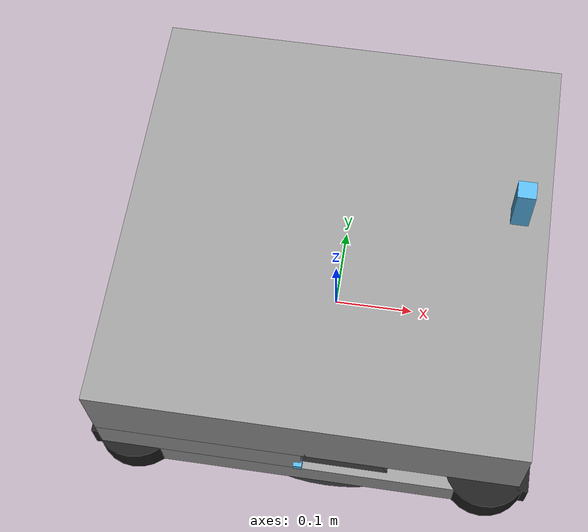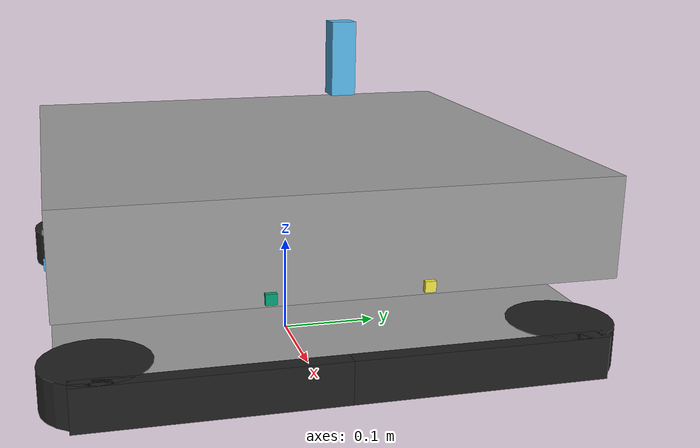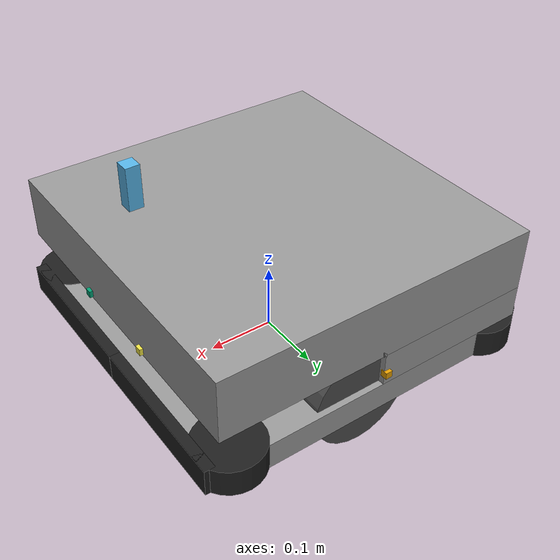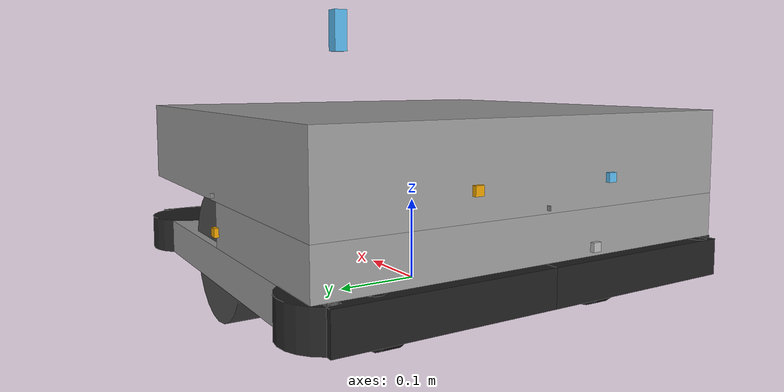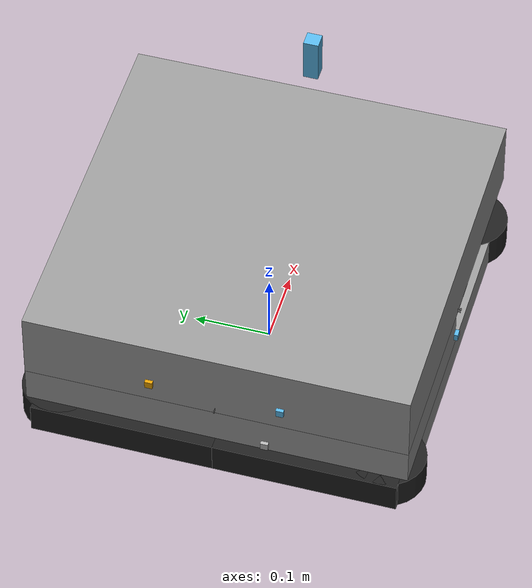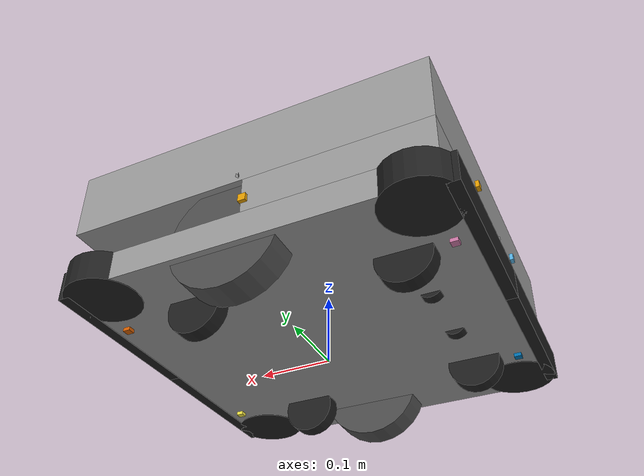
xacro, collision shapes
<?xml version="1.0"?>
<robot name="gobot" xmlns:xacro="http://ros.org/wiki/xacro">

    <!-- general xacro's file -->
    <xacro:include filename="$(find gobot_description)/urdf/utilities/materials.xacro" />
    <xacro:include filename="$(find gobot_description)/urdf/utilities/macros.xacro" />
    <!-- xacro for base link -->
    <xacro:include filename="$(find gobot_description)/urdf/base/base_link.urdf.xacro" />
    <!-- xacro for the driving wheels -->
    <xacro:include filename="$(find gobot_description)/urdf/wheels/wheel.urdf.xacro" />
    <xacro:include filename="$(find gobot_description)/urdf/wheels/caster.urdf.xacro" />
    <!-- xacro for the laser -->
    <xacro:include filename="$(find gobot_description)/urdf/laser/hokuyo_04lx_laser.urdf.xacro" />
    <!-- xacro for the odometry -->
    <xacro:include filename="$(find gobot_description)/urdf/wheels/wheel_controller.gazebo.xacro" />
    <!-- xacro for the bumpers -->
    <xacro:include filename="$(find gobot_description)/urdf/bumper/bumper.urdf.xacro" />
    <xacro:include filename="$(find gobot_description)/urdf/bumper/cyl_bumper.urdf.xacro" />
    <!-- xacro for sonars -->
    <xacro:include filename="$(find gobot_description)/urdf/sonar/sonar.urdf.xacro" />
    <!-- xacro for cliff sensors -->
    <xacro:include filename="$(find gobot_description)/urdf/cliff/cliff.urdf.xacro" />
    <!-- xacro for camera (IR) sensors -->
    <xacro:include filename="$(find gobot_description)/urdf/camera/camera.urdf.xacro" />
    <!-- xacro for the battery -->
    <xacro:include filename="$(find gobot_description)/urdf/battery/battery.urdf.xacro" />

    <!-- Base -->
    <xacro:property name="base_width" value="0.49" />
    <xacro:property name="base_length" value="0.50" />
    <xacro:property name="base_height" value="0.185" />
    <xacro:property name="lower_base_height" value="0.04" />
    <xacro:property name="base_space_height" value="0.05" />
    <xacro:property name="base_space_width" value="0.25" />

    <!-- Laser -->
    <xacro:property name="laser_width" value="0.01" />
    <xacro:property name="laser_length" value="0.05" />
    <xacro:property name="laser_height" value="0.06" />

    <!-- Wheels -->
    <xacro:property name="driving_wheel_radius" value="0.075" />
    <xacro:property name="driving_wheel_length" value="0.042" />
    <xacro:property name="driving_wheel_mass" value="0.6" /> <!-- in kg-->

    <!-- Bumper -->
    <xacro:property name="bumper_width" value="0.016" />
    <xacro:property name="bumper_length" value="0.24" />
    <xacro:property name="bumper_height" value="0.041" />
    <xacro:property name="bumper_radius" value="0.05" />

    <!-- Battery -->
    <xacro:property name="battery_height" value="0.015" />
    <xacro:property name="battery_radius" value="0.0165" />

    <xacro:property name="originZ" value="0.05"/>

    <xacro:property name="visualize" value="false"/>

    <!-- robot base -->
    <base_link base_width="${base_width}" base_length="${base_length}" base_height="${base_height}" lower_base_height="${lower_base_height}" base_space_height="${base_space_height}" base_space_width="${base_space_width}" originZ="${originZ}"/>

    <!-- bumpers -->
    <cyl_bumper name="front_right_cyl_bumper" parent="base_link" height="${bumper_height}" radius="${bumper_radius}" translateX="${base_width/2 - 0.0345}" translateY="${-(base_length/2 - 0.035)}" translateZ="${originZ}" jointLowerLimit="-0.005" jointUpperLimit="0" jointVelocity="0.5"
        collision="base_link_fixed_joint_lump__front_right_cyl_bumper_collision_12"/>
    <cyl_bumper name="front_left_cyl_bumper" parent="base_link" height="${bumper_height}" radius="${bumper_radius}" translateX="${base_width/2 - 0.0345}" translateY="${base_length/2 - 0.035}" translateZ="${originZ}" jointLowerLimit="-0.005" jointUpperLimit="0" jointVelocity="0.5"
        collision="base_link_fixed_joint_lump__front_left_cyl_bumper_collision_10"/>
    <cyl_bumper name="back_right_cyl_bumper" parent="base_link" height="${bumper_height}" radius="${bumper_radius}" translateX="${-(base_width/2 - 0.0345)}" translateY="${-(base_length/2 - 0.035)}" translateZ="${originZ}" jointLowerLimit="0" jointUpperLimit="0.005" jointVelocity="-0.5"
        collision="base_link_fixed_joint_lump__back_right_cyl_bumper_collision_4"/>
    <cyl_bumper name="back_left_cyl_bumper" parent="base_link" height="${bumper_height}" radius="${bumper_radius}" translateX="${-(base_width/2 - 0.0345)}" translateY="${base_length/2 - 0.035}" translateZ="${originZ}" jointLowerLimit="0" jointUpperLimit="0.005" jointVelocity="-0.5"
        collision="base_link_fixed_joint_lump__back_left_cyl_bumper_collision_2"/>

    <bumper name="front_right_bumper" parent="base_link" width="${bumper_width}" length="${bumper_length}" height="${bumper_height}" translateX="${base_width/2 + bumper_width/2}" translateY="${-bumper_length/2}" translateZ="${originZ}" jointLowerLimit="-0.005" jointUpperLimit="0" jointVelocity="0.5"
        collision="base_link_fixed_joint_lump__front_right_bumper_collision_11"/>
    <bumper name="front_left_bumper" parent="base_link" width="${bumper_width}" length="${bumper_length}" height="${bumper_height}" translateX="${base_width/2 + bumper_width/2}" translateY="${bumper_length/2}" translateZ="${originZ}" jointLowerLimit="-0.005" jointUpperLimit="0" jointVelocity="0.5"
        collision="base_link_fixed_joint_lump__front_left_bumper_collision_9"/>
    <bumper name="back_right_bumper" parent="base_link" width="${bumper_width}" length="${bumper_length}" height="${bumper_height}" translateX="${-(base_width/2 + bumper_width/2)}" translateY="${-bumper_length/2}" translateZ="${originZ}" jointLowerLimit="0" jointUpperLimit="0.005" jointVelocity="-0.5"
        collision="base_link_fixed_joint_lump__back_right_bumper_collision_3"/>
    <bumper name="back_left_bumper" parent="base_link" width="${bumper_width}" length="${bumper_length}" height="${bumper_height}" translateX="${-(base_width/2 + bumper_width/2)}" translateY="${bumper_length/2}" translateZ="${originZ}" jointLowerLimit="0" jointUpperLimit="0.005" jointVelocity="-0.5"
        collision="base_link_fixed_joint_lump__back_left_bumper_collision_1"/>

    <!-- driving wheels -->
    <wheel fb="front" lr="right" parent="base_link" translateX="${-(base_width/2 - 0.267)}" translateY="-0.220" translateZ="${-(lower_base_height / 2 - driving_wheel_radius)}" flipY="1" radius="${driving_wheel_radius}" length="${driving_wheel_length}" mass="${driving_wheel_mass}" />
    <wheel fb="front" lr="left" parent="base_link" translateX="${-(base_width/2 - 0.267)}" translateY="0.220" translateZ="${-(lower_base_height / 2 - driving_wheel_radius)}" flipY="1" radius="${driving_wheel_radius}" length="${driving_wheel_length}" mass="${driving_wheel_mass}" />

    <!-- Odometry/Wheel controller -->
    <wheel_controller base_link="base_link" odom_topic="odom" command_topic="cmd_vel" left_wheel_joint="front_left_wheel_joint" right_wheel_joint="front_right_wheel_joint"
    update_rate="10" wheel_separation="0.440" wheel_diameter="${driving_wheel_radius*2}" torque="5" />

    <!-- caster wheels -->
    <caster_wheel fb="front" lr="right" parent="base_link" translateX="${base_width/2 - 0.140}" translateY="${-(base_length/2 - 0.090)}" translateZ="${-(lower_base_height / 2 - 0.037)}" flipY="1"  />
    <caster_wheel fb="front" lr="left" parent="base_link" translateX="${base_width/2 - 0.140}" translateY="${base_length/2 - 0.090}" translateZ="${-(lower_base_height / 2 - 0.037)}" flipY="1"/>
    <caster_wheel fb="back" lr="right" parent="base_link" translateX="${-(base_width/2 - 0.080)}" translateY="${-(base_length/2 - 0.110)}" translateZ="${-(lower_base_height / 2 - 0.037) + 0.008}" flipY="1"/>
    <caster_wheel fb="back" lr="left" parent="base_link" translateX="${-(base_width/2 - 0.080)}" translateY="${base_length/2 - 0.110}" translateZ="${-(lower_base_height / 2 - 0.037) + 0.008}" flipY="1"/>

    <!-- Hokuyo Laser -->
    <hokuyo_04lx_laser name="hokuyo" parent="base_link" ros_topic="/scan" update_rate="20" min_angle="${-1.8}" max_angle="${1.8}" translateX="${base_width/2 - 0.04266}" translateY="0" translateZ="${0.29}" visualize="1"/>

    <!-- Cliff sensor, IR technology on real robot but we use a sonar here to simulate -->
    <!-- In order; front left, back left, front right, back right -->
    <cliff_sensor name="cliff_sensor" parent="base_link" ros_topic="cliff_sensor_topic" update_rate="10" min_range="0.03" max_range="2.0" field_of_view="0.05" ray_count="1" pos_x="${base_width/2-0.02}" pos_y="${-(base_width/2 - 0.10)}" pos_z="${originZ - lower_base_height/2}" rotation_y="${pi/2}" gaussian_noise="0.03" resolution="0.01" />
    <cliff_sensor name="cliff_sensor_2" parent="base_link" ros_topic="cliff_sensor_2_topic" update_rate="10" min_range="0.01" max_range="2.0" field_of_view="0.05" ray_count="1" pos_x="${-base_width/2+0.02}" pos_y="${-(base_width/2 - 0.10)}" pos_z="${originZ - lower_base_height/2}" rotation_y="${pi/2}" gaussian_noise="0.03" resolution="0.01" />
    <cliff_sensor name="cliff_sensor_3" parent="base_link" ros_topic="cliff_sensor_3_topic" update_rate="10" min_range="0.01" max_range="2.0" field_of_view="0.05" ray_count="1" pos_x="${base_width/2-0.02}" pos_y="${(base_width/2 - 0.10)}" pos_z="${originZ - lower_base_height/2}" rotation_y="${pi/2}" gaussian_noise="0.03" resolution="0.01" />
    <cliff_sensor name="cliff_sensor_4" parent="base_link" ros_topic="cliff_sensor_4_topic" update_rate="10" min_range="0.01" max_range="2.0" field_of_view="0.05" ray_count="1" pos_x="${-base_width/2+0.02}" pos_y="${(base_width/2 - 0.10)}" pos_z="${originZ - lower_base_height/2}" rotation_y="${pi/2}" gaussian_noise="0.03" resolution="0.01" />

    <!-- Sonar sensors, in order: rear, left side, right side, front right and front left -->
    <sonar_sensor name="sonar_rear" parent="base_link" ros_topic="/sensors/sonar_sensor/sonar_rear" update_rate="20" min_range="0.15" max_range="2.5" field_of_view="${pi/18}" ray_count="10" pos_x="${-base_width/2}" pos_y="-0.065"  pos_z="0.08" rotation_z="${pi}" gaussian_noise="0.01" resolution="0.0174" visualize="${visualize}"/>
    <sonar_sensor name="sonar_left" parent="base_link" ros_topic="/sensors/sonar_sensor/sonar_left" update_rate="20" min_range="0.15" max_range="2.5" field_of_view="${pi/18}" ray_count="10" pos_x="-0.009" pos_y="${base_length/2}" pos_z="0.088" rotation_z="${pi/2}" gaussian_noise="0.01" resolution="0.0174" visualize="${visualize}"/>
    <sonar_sensor name="sonar_right" parent="base_link" ros_topic="/sensors/sonar_sensor/sonar_right" update_rate="20" min_range="0.15" max_range="2.5" field_of_view="${pi/18}" ray_count="10" pos_x="-0.009" pos_y="${-base_length/2}" pos_z="0.088" rotation_z="${3*pi/2}" gaussian_noise="0.01" resolution="0.0174" visualize="${visualize}"/>
    <sonar_sensor name="sonar_front_right" parent="base_link" ros_topic="/sensors/sonar_sensor/sonar_front_right" update_rate="20" min_range="0.15" max_range="2.5" field_of_view="${pi/18}" ray_count="10" pos_x="${base_width/2}" pos_y="-0.070" pos_z="0.128" rotation_z="0.0" gaussian_noise="0.01" resolution="0.0174" visualize="${visualize}"/>
    <sonar_sensor name="sonar_front_left" parent="base_link" ros_topic="/sensors/sonar_sensor/sonar_front_left" update_rate="20" min_range="0.15" max_range="2.5" field_of_view="${pi/18}" ray_count="10" pos_x="${base_width/2}" pos_y="0.070" pos_z="0.128" rotation_z="0.0" gaussian_noise="0.01" resolution="0.0174" visualize="${visualize}"/>

    <!-- IR sensors -->
    <camera_sensor name="rear" parent="base_link" pos_x="${-base_width/2}" pos_y="0" pos_z="0.126" rotation_z="0" angle="${pi * 15 / 180}"/>
    <camera_sensor name="right" parent="base_link" pos_x="0" pos_y="${-base_length/2}" pos_z="0.126" rotation_z="${pi/2}" angle="${pi/4}"/>
    <camera_sensor name="left" parent="base_link" pos_x="0" pos_y="${base_length/2}" pos_z="0.126" rotation_z="${pi*3/2}" angle="${pi/4}"/>

    <!-- Proximity sensors -->
    <sonar_sensor name="prox_left" parent="base_link" ros_topic="/sensors/sonar_sensor/proximity_left" update_rate="20" min_range="0.05" max_range="0.15" field_of_view="0.05" ray_count="1" pos_x="${-base_width/2}" pos_y="0.085" pos_z="0.15" rotation_z="${pi}" gaussian_noise="0.0" resolution="0.01" visualize="1"/>
    <sonar_sensor name="prox_right" parent="base_link" ros_topic="/sensors/sonar_sensor/proximity_right" update_rate="20" min_range="0.05" max_range="0.15" field_of_view="0.05" ray_count="1" pos_x="${-base_width/2}" pos_y="-0.085" pos_z="0.15" rotation_z="${pi}" gaussian_noise="0.0" resolution="0.01" visualize="1"/>

    <!-- Battery sensors -->
    <battery name="left_battery" parent="base_link" height="${battery_height}" radius="${battery_radius}" translateX="${-base_width/2 + 0.08}" translateY="0.049" translateZ="0.040" rotationX="${pi/2}" collision="left_battery_collision" update_rate="20"/>
    <battery name="right_battery" parent="base_link" height="${battery_height}" radius="${battery_radius}" translateX="${-base_width/2 + 0.08}" translateY="-0.049" translateZ="0.040" rotationX="${pi/2}" collision="right_battery_collision" update_rate="20"/>

</robot>

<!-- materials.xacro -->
<robot>
    <material name="black">
        <color rgba="0.0 0.0 0.0 1.0"/>
    </material>

    <material name="blue">
        <color rgba="0.0 0.0 0.8 1.0"/>
    </material>

    <material name="green">
        <color rgba="0.0 0.8 0.0 1.0"/>
    </material>

    <material name="grey">
        <color rgba="0.2 0.2 0.2 1.0"/>
    </material>

    <material name="orange">
        <color rgba="${255/255} ${108/255} ${10/255} 1.0"/>
    </material>

    <material name="brown">
        <color rgba="${222/255} ${207/255} ${195/255} 1.0"/>
    </material>

    <material name="red">
        <color rgba="0.8 0.0 0.0 1.0"/>
    </material>

    <material name="white">
        <color rgba="1.0 1.0 1.0 1.0"/>
    </material>
</robot>

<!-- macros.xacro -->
<robot name="gobot" xmlns:xacro="http://ros.org/wiki/xacro">

<xacro:macro name="cylinder_inertia" params="m r h">
  <inertia  ixx="${m*(3*r*r+h*h)/12}" ixy = "0" ixz = "0"
    iyy="${m*(3*r*r+h*h)/12}" iyz = "0"
    izz="${m*r*r/2}"
  />
</xacro:macro>

<xacro:macro name="box_inertia" params="m x y z">
  <inertia  ixx="${m*(y*y+z*z)/12}" ixy = "0" ixz = "0"
    iyy="${m*(x*x+z*z)/12}" iyz = "0"
    izz="${m*(x*x+z*z)/12}"
  />
</xacro:macro>

<xacro:macro name="sphere_inertia" params="m r">
  <inertia  ixx="${2*m*r*r/5}" ixy = "0" ixz = "0"
    iyy="${2*m*r*r/5}" iyz = "0"
    izz="${2*m*r*r/5}"
  />
</xacro:macro>

</robot>

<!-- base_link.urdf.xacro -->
<robot name="base_link" xmlns:xacro="http://ros.org/wiki/xacro">
    <xacro:macro name="base_link" params="originZ base_width base_length base_height lower_base_height base_space_height base_space_width"> <!--fb : front, back ; lr: left, right -->
        <!-- The lower part of the base link -->
        <link name="base_link">
            <collision>
                <origin xyz="0 0 ${originZ}" rpy="0 0 0"/>
                <geometry>
                    <box size="${base_width} ${base_length} ${lower_base_height}"/>
                </geometry>
            </collision>
            <visual>
                <origin xyz="0 0 ${originZ}" rpy="0 0 0"/>
                <geometry>
                    <box size="${base_width} ${base_length} ${lower_base_height}"/>
                </geometry>
            </visual>
            <inertial>
                <origin xyz="0 0 ${originZ}" rpy="0 0 0"/>
                <mass value="4"/>
                <box_inertia m="4" x="${base_width}" y="${base_length}" z="${lower_base_height}"/>
            </inertial>
        </link>
        <gazebo reference="base_link">
            <material>Gazebo/Grey</material>
        </gazebo>

        <!-- The middle part of the base link -->
        <link name="mid_base_link">
            <collision>
                <origin xyz="0 0 ${originZ}" rpy="0 0 0"/>
                <geometry>
                    <box size="${base_width - base_space_width} ${base_length} ${base_space_height}"/>
                </geometry>
            </collision>
            <visual>
                <origin xyz="0 0 ${originZ}" rpy="0 0 0"/>
                <geometry>
                    <box size="${base_width - base_space_width} ${base_length } ${base_space_height}"/>
                </geometry>
            </visual>
            <inertial>
                <origin xyz="0 0 ${originZ}" rpy="0 0 0"/>
                <mass value="2"/>
                <box_inertia m="2" x="${base_width - base_space_width}" y="${base_length}" z="${base_space_height}"/>
            </inertial>
        </link>
        <gazebo reference="mid_base_link">
            <material>Gazebo/Grey</material>
        </gazebo>

        <!-- The top part of the base link -->
        <link name="top_base_link">
            <collision>
                <origin xyz="0 0 ${originZ}" rpy="0 0 0"/>
                <geometry>
                    <box size="${base_width} ${base_length} ${base_height - base_space_height - lower_base_height}"/>
                </geometry>
            </collision>
            <visual>
                <origin xyz="0 0 ${originZ}" rpy="0 0 0"/>
                <geometry>
                    <box size="${base_width} ${base_length} ${base_height - base_space_height - lower_base_height}"/>
                </geometry>
            </visual>
            <inertial>
                <origin xyz="0 0 ${originZ}" rpy="0 0 0"/>
                <mass value="4"/>
                <box_inertia m="4" x="${base_width}" y="${base_length}" z="${base_height - base_space_height - lower_base_height}"/>
            </inertial>
        </link>
        <gazebo reference="top_base_link">
            <material>Gazebo/Grey</material>
        </gazebo>

        <!-- The joint between the lower and middle part of the base link -->
        <joint name="lower_mid_joint" type="fixed">
            <origin xyz="${-(base_width/2 - (base_width - base_space_width)/2)} 0 ${lower_base_height/2 + base_space_height/2}" />
            <parent link="base_link"/>
            <child link="mid_base_link"/>
        </joint>

        <!-- The joint between the middle and top part of the base link -->
        <joint name="mid_top_joint" type="fixed">
            <origin xyz="${base_width/2 - (base_width - base_space_width)/2} 0 ${(base_height - base_space_height - lower_base_height)/2 + base_space_height/2}" />
            <parent link="mid_base_link"/>
            <child link="top_base_link"/>
        </joint>
    </xacro:macro>
</robot>

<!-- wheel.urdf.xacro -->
<robot name="wheel" xmlns:xacro="http://ros.org/wiki/xacro">
    <xacro:include filename="$(find gobot_description)/urdf/wheels/wheel.gazebo.xacro" />

    <xacro:macro name="cylinder_inertia" params="m r h">
        <inertia  ixx="${m*(3*r*r+h*h)/12}" ixy = "0" ixz = "0"
            iyy="${m*(3*r*r+h*h)/12}" iyz = "0"
            izz="${m*r*r/2}" />
    </xacro:macro>

    <xacro:macro name="wheel" params="fb lr parent translateX translateY translateZ flipY radius length mass"> <!--fb : front, back ; lr: left, right -->
        <link name="${fb}_${lr}_wheel">
            <visual>
                <origin xyz="0 0 0" rpy="${flipY*pi/2} 0  0 " />
                <geometry>
                    <cylinder length="${length}" radius="${radius}" />
                </geometry>
                <material name="DarkGray" />
            </visual>
            <collision>
                <origin xyz="0 0 0" rpy="${flipY*pi/2} 0 0 " />
                <geometry>
                    <cylinder length="${length}" radius="${radius}" />
                </geometry>
            </collision>
            <inertial>
                <mass value="${mass}" />
                <origin xyz="0 0 0" />
                <cylinder_inertia  m="${mass}" r="${radius}" h="${length}" />
            </inertial>
        </link>

        <joint name="${fb}_${lr}_wheel_joint" type="continuous">
            <parent link="${parent}"/>
            <child link="${fb}_${lr}_wheel"/>
            <origin xyz="${translateX} ${translateY} ${translateZ}" rpy="0 0 0" />
            <axis xyz="0 1 0" rpy="0 0 0" />
            <limit effort="100" velocity="100"/>
            <joint_properties damping="0.0" friction="0.0"/>
        </joint>

        <!-- gazebo extensions -->
        <xacro:wheel_gazebo fb="${fb}" lr="${lr}"/>

    </xacro:macro>
</robot>

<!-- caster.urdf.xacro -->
<robot name="caster_wheel" xmlns:xacro="http://ros.org/wiki/xacro">
    <xacro:include filename="$(find gobot_description)/urdf/wheels/caster.gazebo.xacro" />

    <!-- Caster Wheels -->
    <xacro:property name="caster_wheel_radius" value="0.037" />
    <xacro:property name="caster_wheel_height" value="0.023" />
    <xacro:property name="caster_wheel_mass" value="0.2" />

    <xacro:macro name="cylinder_inertia" params="m r h">
        <inertia  ixx="${m*(3*r*r+h*h)/12}" ixy = "0" ixz = "0"
        iyy="${m*(3*r*r+h*h)/12}" iyz = "0"
        izz="${m*r*r/2}" />
    </xacro:macro>

    <xacro:macro name="caster_wheel" params="fb lr parent translateX translateY translateZ flipY"> <!--fb : front, back ; lr: left, right -->
        <link name="${fb}_${lr}_caster_wheel">
            <visual>
                <origin xyz="0 0 0" rpy="${flipY*pi/2} 0  0 " />
                <geometry>
                    <cylinder length="${caster_wheel_height}" radius="${caster_wheel_radius}" />
                </geometry>
            </visual>
            <collision>
                <origin xyz="0 0 0" rpy="${flipY*pi/2} 0 0 " />
                <geometry>
                    <cylinder length="${caster_wheel_height}" radius="${caster_wheel_radius}" />
                </geometry>
            </collision>
            <inertial>
                <mass value="${caster_wheel_mass}" />
                <origin xyz="0 0 0" />
                <cylinder_inertia  m="${caster_wheel_mass}" r="${caster_wheel_radius}" h="${caster_wheel_height}" />
            </inertial>
        </link>

        <joint name="${fb}_${lr}_caster_wheel_joint" type="continuous">
            <parent link="${parent}"/>
            <child link="${fb}_${lr}_caster_wheel"/>
            <origin xyz="${translateX} ${translateY} ${translateZ}" rpy="0 0 0"/>
            <axis xyz="0 1 0" rpy="0 0 0"/>
        </joint>

        <!-- gazebo extensions -->
        <xacro:caster_wheel_gazebo name="${fb}_${lr}_caster_wheel" />
    </xacro:macro>
</robot>

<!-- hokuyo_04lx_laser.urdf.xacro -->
<root xmlns:xacro="http://ros.org/wiki/xacro">

    <xacro:include filename="$(find gobot_description)/urdf/laser/hokuyo_04lx_laser.gazebo.xacro" />

    <xacro:macro name="hokuyo_04lx_laser" params="name parent ros_topic update_rate min_angle max_angle translateX translateY translateZ visualize">
        <joint name="${name}_joint" type="fixed">
            <axis xyz="0 1 0" />
            <origin xyz="${translateX} ${translateY} ${translateZ}" rpy="0 0 0"/>
            <parent link="${parent}"/>
            <child link="${name}_link"/>
        </joint>

        <link name="${name}_link">
            <inertial>
                <mass value="0.001" />
                <origin xyz="0 0 0" rpy="0 0 0" />
                <inertia ixx="0.0001" ixy="0" ixz="0" iyy="0.000001" iyz="0" izz="0.0001" />
            </inertial>
            <visual>
                <origin xyz="0 0 0" rpy="0 0 0" />
                <geometry>
                    <mesh filename="$(find gobot_description)/meshes/hokuyo.dae" scale="0.024 0.024 0.024" />
                </geometry>
            </visual>
            <collision>
                <!-- specifying a slightly too small collision surface because otherwise gazebo simulation catches on it -->
                <origin xyz="0 0 0.03" rpy="0 0 0" />
                <geometry>
                    <box size="0.02 0.02 0.06"/>
                </geometry>
            </collision>

        </link>

        <!-- go from the base of the laser to the actual sensor location -->
        <joint name="${name}_laser_joint" type="fixed">
            <origin xyz="0.002 0 0.0525" /> <!-- in segbot package was 0.058 but looking at specs it is less -->
            <parent link="${name}_link"/>
            <child link="${name}_laser_link"/>
        </joint>

        <link name="${name}_laser_link" type="laser">
            <inertial>
                <mass value="0.001" />
                <origin xyz="0 0 0" rpy="0 0 0" />
                <inertia ixx="0.0001" ixy="0" ixz="0" iyy="0.000001" iyz="0" izz="0.0001" />
            </inertial>
        </link>

        <!-- gazebo extensions -->
        <xacro:hokuyo_04lx_laser_gazebo name="${name}" ros_topic="${ros_topic}" update_rate="${update_rate}" min_angle="${min_angle}" max_angle="${max_angle}" visualize="${visualize}"/>
    </xacro:macro>

</root>

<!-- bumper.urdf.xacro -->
<robot name="bumper" xmlns:xacro="http://ros.org/wiki/xacro">
    <xacro:include filename="$(find gobot_description)/urdf/bumper/bumper.gazebo.xacro" />

    <xacro:macro name="bumper" params="name parent width length height translateX translateY translateZ collision jointLowerLimit jointUpperLimit jointVelocity">
        <link name="${name}">
            <collision name="${name}">
                <origin xyz="0 0 0" rpy="0 0 0"/>
                <geometry>
                    <box size="${width} ${length} ${height}"/>
                </geometry>
            </collision>
            <visual>
                <origin xyz="0 0 0" rpy="0 0 0"/>
                <geometry>
                    <box size="${width} ${length} ${height}"/>
                </geometry>
            </visual>
            <inertial>
                <origin xyz="0 0 0" rpy="0 0 0"/>
                <mass value="0.4"/>
                <box_inertia m="0.4" x="${width}" y="${length}" z="${height}"/>
            </inertial>
        </link>

        <!-- The joint between the bumper and parent -->
        <joint name="${name}_joint" type="prismatic">
            <parent link="${parent}"/>
            <child link="${name}"/>
            <origin xyz="${translateX} ${translateY} ${translateZ}" rpy="0 0 0"/>
            <axis xyz="01 0 0"/>
            <limit effort="1" lower="${jointLowerLimit}" upper="${jointUpperLimit}" velocity="${jointVelocity}"/>
        </joint>

        <!-- gazebo extensions -->
        <xacro:bumper_gazebo name="${name}" collision="${collision}"/>
    </xacro:macro>
</robot>

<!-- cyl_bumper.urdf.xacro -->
<robot name="cyl_bumper" xmlns:xacro="http://ros.org/wiki/xacro">
    <xacro:include filename="$(find gobot_description)/urdf/bumper/bumper.gazebo.xacro" />

    <xacro:macro name="cylinder_inertia" params="m r h">
        <inertia  ixx="${m*(3*r*r+h*h)/12}" ixy = "0" ixz = "0"
        iyy="${m*(3*r*r+h*h)/12}" iyz = "0"
        izz="${m*r*r/2}" />
    </xacro:macro>

    <!-- Cylindric bumper -->
    <xacro:macro name="cyl_bumper" params="name parent height radius translateX translateY translateZ collision jointLowerLimit jointUpperLimit jointVelocity">
        <link name="${name}">
            <visual>
                <origin xyz="0 0 0" rpy="0 0  0 " />
                <geometry>
                    <cylinder length="${height}" radius="${radius}" />
                </geometry>
            </visual>
            <collision>
                <origin xyz="0 0 0" rpy="0 0 0 " />
                <geometry>
                    <cylinder length="${height}" radius="${radius}" />
                </geometry>
            </collision>
            <inertial>
                <mass value="0.1" />
                <origin xyz="0 0 0" />
                <cylinder_inertia  m="0.1" r="${radius}" h="${height}" />
            </inertial>
        </link>

        <joint name="${name}_joint" type="prismatic">
            <parent link="${parent}"/>
            <child link="${name}"/>
            <origin xyz="${translateX} ${translateY} ${translateZ}" rpy="0 0 0"/>
            <axis xyz="01 0 0"/>
            <limit effort="1" lower="${jointLowerLimit}" upper="${jointUpperLimit}" velocity="${jointVelocity}"/>
        </joint>

        <!-- gazebo extensions -->
        <xacro:bumper_gazebo name="${name}" collision="${collision}" />
    </xacro:macro>
</robot>

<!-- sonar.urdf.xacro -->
<robot xmlns:xacro="http://ros.org/wiki/xacro">

    <xacro:include filename="$(find gobot_description)/urdf/sonar/sonar.gazebo.xacro" />

    <xacro:macro name="sonar_sensor" params="name parent ros_topic update_rate min_range max_range field_of_view ray_count pos_x pos_y pos_z rotation_z gaussian_noise resolution visualize">
        <joint name="${name}_joint" type="fixed">
            <origin xyz="${pos_x} ${pos_y} ${pos_z}" rpy="0 0 ${rotation_z}" />
            <parent link="${parent}"/>
            <child link="${name}_link"/>
        </joint>

        <link name="${name}_link">
            <inertial>
                <mass value="0.001" />
                <origin xyz="0 0 0" rpy="0 0 0" />
                <inertia ixx="0.000000017" ixy="0" ixz="0" iyy="0.000000017" iyz="0" izz="0.000000017" />
            </inertial>
            <visual>
                <origin xyz="0 0 0" rpy="0 0 0" />
                <geometry>
                    <mesh filename="package://hector_sensors_description/meshes/sonar_sensor/max_sonar_ez4.dae"/>
                </geometry>
            </visual>
            <collision>
                <origin xyz="0 0 0" rpy="0 0 0" />
                <geometry>
                    <box size="0.01 0.01 0.01" />
                </geometry>
            </collision>
        </link>

        <sonar_sensor_gazebo name="${name}" ros_topic="${ros_topic}" update_rate="${update_rate}" min_range="${min_range}" max_range="${max_range}" field_of_view="${field_of_view}" ray_count="${ray_count}" rotation_z="${rotation_z}" gaussian_noise="${gaussian_noise}" resolution="${resolution}" visualize="${visualize}"/>
    </xacro:macro>
</robot>

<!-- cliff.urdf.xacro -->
<robot xmlns:xacro="http://ros.org/wiki/xacro">

  <xacro:include filename="$(find gobot_description)/urdf/cliff/cliff.gazebo.xacro" />

  <xacro:macro name="cliff_sensor" params="name parent ros_topic update_rate min_range max_range field_of_view ray_count pos_x pos_y pos_z rotation_y gaussian_noise resolution">
    <joint name="${name}_joint" type="fixed">
      <origin xyz="${pos_x} ${pos_y} ${pos_z}" rpy="0 ${rotation_y} 0" />
      <parent link="${parent}"/>
      <child link="${name}_link"/>
    </joint>

    <link name="${name}_link">
      <inertial>
        <mass value="0.001" />
        <origin xyz="0 0 0" rpy="0 0 0" />
        <inertia ixx="0.000000017" ixy="0" ixz="0" iyy="0.000000017" iyz="0" izz="0.000000017" />
      </inertial>
      <visual>
        <origin xyz="0 0 0" rpy="0 0 0" />
        <geometry>
          <mesh filename="package://hector_sensors_description/meshes/sonar_sensor/max_sonar_ez4.dae"/>
        </geometry>
      </visual>
      <collision>
        <origin xyz="0 0 0" rpy="0 0 0" />
        <geometry>
          <box size="0.01 0.01 0.01" />
        </geometry>
      </collision>
    </link>

    <cliff_sensor_gazebo name="${name}" ros_topic="${ros_topic}" update_rate="${update_rate}" min_range="${min_range}" max_range="${max_range}" field_of_view="${field_of_view}" ray_count="${ray_count}" gaussian_noise="${gaussian_noise}" resolution="${resolution}" />
  </xacro:macro>
</robot>

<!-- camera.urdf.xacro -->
<robot xmlns:xacro="http://ros.org/wiki/xacro">

    <xacro:include filename="$(find gobot_description)/urdf/camera/camera.gazebo.xacro" />
    <xacro:property name="width" value="0.0001"/>
    <xacro:property name="length" value="0.005"/>
    <xacro:property name="height" value="0.005"/>

    <xacro:macro name="camera_sensor" params="name parent pos_x pos_y pos_z rotation_z angle">

        <link name="${name}_1_wall_link">
            <inertial>
                <mass value="0.001" />
                <origin xyz="0 0 0" rpy="0 0 0" />
                <inertia ixx="0.000000017" ixy="0" ixz="0" iyy="0.000000017" iyz="0" izz="0.000000017" />
            </inertial>
            <visual>
                <origin xyz="0 0 0" rpy="0 0 0" />
                <geometry>
                    <box size="${width} ${length} ${height}" />
                </geometry>
                <cast_shadows>0</cast_shadows>
            </visual>
            <collision>
                <origin xyz="0 0 0" rpy="0 0 0" />
                <geometry>
                    <box size="${width} ${length} ${height}" />
                </geometry>
            </collision>
        </link>

        <link name="${name}_1_link">
            <inertial>
                <mass value="0.001" />
                <origin xyz="0 0 0" rpy="0 0 0" />
                <inertia ixx="0.000000017" ixy="0" ixz="0" iyy="0.000000017" iyz="0" izz="0.000000017" />
            </inertial>
            <visual>
                <origin xyz="0 0 0" rpy="0 0 0" />
                <geometry>
                    <box size="0.00001 0.00001 0.00001" />
                </geometry>
                <cast_shadows>0</cast_shadows>
            </visual>
            <collision>
                <origin xyz="0 0 0" rpy="0 0 0" />
                <geometry>
                    <box size="0.00001 0.00001 0.00001" />
                </geometry>
            </collision>
        </link>

        <link name="${name}_2_wall_link">
            <inertial>
                <mass value="0.001" />
                <origin xyz="0 0 0" rpy="0 0 0" />
                <inertia ixx="0.000000017" ixy="0" ixz="0" iyy="0.000000017" iyz="0" izz="0.000000017" />
            </inertial>
            <visual>
                <origin xyz="0 0 0" rpy="0 0 0" />
                <geometry>
                    <box size="${width} ${length} ${height}" />
                </geometry>
                <cast_shadows>0</cast_shadows>
            </visual>
            <collision>
                <origin xyz="0 0 0" rpy="0 0 0" />
                <geometry>
                    <box size="${width} ${length} ${height}" />
                </geometry>
            </collision>
        </link>

        <link name="${name}_2_link">
            <inertial>
                <mass value="0.001" />
                <origin xyz="0 0 0" rpy="0 0 0" />
                <inertia ixx="0.000000017" ixy="0" ixz="0" iyy="0.000000017" iyz="0" izz="0.000000017" />
            </inertial>
            <visual>
                <origin xyz="0 0 0" rpy="0 0 0" />
                <geometry>
                    <box size="0.00001 0.00001 0.00001" />
                </geometry>
                <cast_shadows>0</cast_shadows>
            </visual>
            <collision>
                <origin xyz="0 0 0" rpy="0 0 0" />
                <geometry>
                    <box size="0.00001 0.00001 0.00001" />
                </geometry>
            </collision>
        </link>

        <joint name="${name}_1_joint_wall" type="fixed">
            <origin xyz="-0.00008 0 0" rpy="0 0 0" />
            <parent link="${name}_1_wall_link"/>
            <child link="${name}_1_link"/>
        </joint>

        <joint name="${name}_2_joint_wall" type="fixed">
            <origin xyz="-0.00008 0 0" rpy="0 0 0" />
            <parent link="${name}_2_wall_link"/>
            <child link="${name}_2_link"/>
        </joint>

        <joint name="${name}_1_joint" type="fixed">
            <origin xyz="${pos_x - length/2 * sin(rotation_z + pi/2 - angle/2)} ${pos_y + length/2 * cos(rotation_z + pi/2 - angle/2)} ${pos_z}" rpy="0 0 ${rotation_z + pi/2 - angle/2}" />
            <parent link="${parent}"/>
            <child link="${name}_1_wall_link"/>
        </joint>

        <joint name="${name}_2_joint" type="fixed">
            <origin xyz="${pos_x + length/2 * sin(rotation_z - pi/2 + angle/2)} ${pos_y - length/2 * cos(rotation_z - pi/2 + angle/2)} ${pos_z}" rpy="0 0 ${rotation_z - pi/2 + angle/2}" />
            <parent link="${parent}"/>
            <child link="${name}_2_wall_link"/>
        </joint>

        <camera_sensor_gazebo name="${name}_1"/>
        <camera_sensor_gazebo name="${name}_2"/>

    </xacro:macro>
</robot>

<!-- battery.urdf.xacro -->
<robot name="battery" xmlns:xacro="http://ros.org/wiki/xacro">
    <xacro:include filename="$(find gobot_description)/urdf/bumper/bumper.gazebo.xacro" />

    <xacro:macro name="battery" params="name parent height radius translateX translateY translateZ rotationX collision update_rate">
        <link name="${name}">
            <visual>
                <origin xyz="0 0 0" rpy="0 0 0" />
                <geometry>
                    <cylinder length="${height}" radius="${radius}" />
                </geometry>
            </visual>
            <collision>
                <origin xyz="0 0 0" rpy="0 0 0" />
                <geometry>
                    <cylinder length="${height}" radius="${radius}" />
                </geometry>
            </collision>
            <inertial>
                <mass value="0.1" />
                <origin xyz="0 0 0" />
                <cylinder_inertia  m="0.1" r="${radius}" h="${height}" />
            </inertial>
        </link>

        <joint name="${name}_joint" type="prismatic">
            <parent link="${parent}"/>
            <child link="${name}"/>
            <origin xyz="${translateX} ${translateY} ${translateZ}" rpy="${rotationX} 0 0"/>
            <axis xyz="0 1 0"/>
            <limit effort="1000.0" lower="0" upper="0.2" velocity="0.5"/>
        </joint>

        <!-- gazebo extensions -->
        <xacro:bumper_gazebo name="${name}" collision="${collision}"/>
    </xacro:macro>
</robot>
